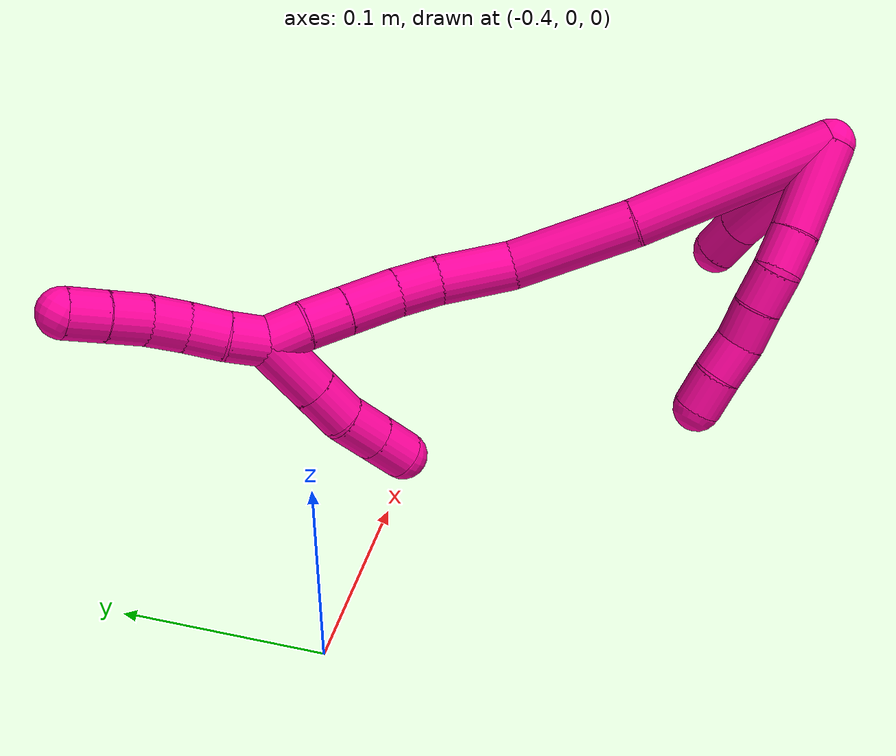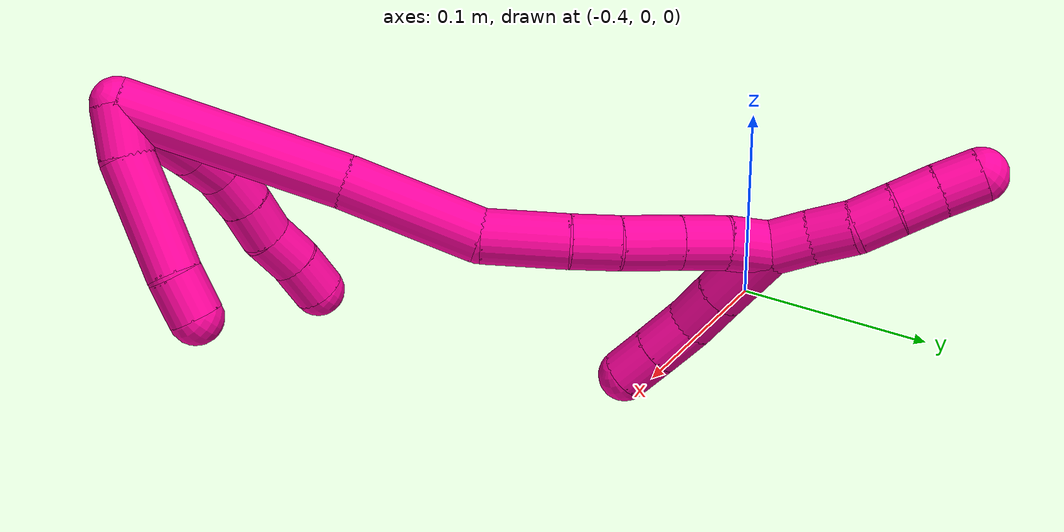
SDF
<sdf version="1.7">
 <world name="default">
  <model name="18">
   <static>0</static>
   <link name="18">
    <collision name="collision-cylinder-e_1_2_8">
     <pose>0.002979 -0.000865 0.023992 0.03603 0.123462 0.002227</pose>
     <geometry><cylinder><radius>0.0125</radius><length>0.048384</length></cylinder></geometry>
     <surface>
      <friction><ode><mu>1.16</mu><mu2>1.16</mu2><slip1>0</slip1><slip2>0</slip2></ode></friction>
      <contact><ode><kp>1e+06</kp><kd>1</kd><max_vel>0</max_vel><min_depth>0.001</min_depth></ode></contact>
     </surface>
    </collision>
    <visual name="visual-cylinder-e_1_2_8">
     <pose>0.002979 -0.000865 0.023992 0.03603 0.123462 0.002227</pose>
     <geometry><cylinder><radius>0.0125</radius><length>0.048384</length></cylinder></geometry>
     <material><ambient>1 0.007843 0.615686 1</ambient></material>
    </visual>
    <collision name="collision-cylinder-e_2_8_9">
     <pose>0.00645 -0.002209 0.058173 0.046996 0.048187 0.001133</pose>
     <geometry><cylinder><radius>0.0125</radius><length>0.020423</length></cylinder></geometry>
     <surface>
      <friction><ode><mu>1.16</mu><mu2>1.16</mu2><slip1>0</slip1><slip2>0</slip2></ode></friction>
      <contact><ode><kp>1e+06</kp><kd>1</kd><max_vel>0</max_vel><min_depth>0.001</min_depth></ode></contact>
     </surface>
    </collision>
    <visual name="visual-cylinder-e_2_8_9">
     <pose>0.00645 -0.002209 0.058173 0.046996 0.048187 0.001133</pose>
     <geometry><cylinder><radius>0.0125</radius><length>0.020423</length></cylinder></geometry>
     <material><ambient>1 0.007843 0.615686 1</ambient></material>
    </visual>
    <collision name="collision-cylinder-e_3_9_10">
     <pose>0.004982 -0.004582 0.078244 0.18933 -0.192385 -0.018323</pose>
     <geometry><cylinder><radius>0.0125</radius><length>0.020505</length></cylinder></geometry>
     <surface>
      <friction><ode><mu>1.16</mu><mu2>1.16</mu2><slip1>0</slip1><slip2>0</slip2></ode></friction>
      <contact><ode><kp>1e+06</kp><kd>1</kd><max_vel>0</max_vel><min_depth>0.001</min_depth></ode></contact>
     </surface>
    </collision>
    <visual name="visual-cylinder-e_3_9_10">
     <pose>0.004982 -0.004582 0.078244 0.18933 -0.192385 -0.018323</pose>
     <geometry><cylinder><radius>0.0125</radius><length>0.020505</length></cylinder></geometry>
     <material><ambient>1 0.007843 0.615686 1</ambient></material>
    </visual>
    <collision name="collision-cylinder-e_4_10_11">
     <pose>0.000701 -0.009223 0.097603 0.282158 -0.231051 -0.032958</pose>
     <geometry><cylinder><radius>0.0125</radius><length>0.02027</length></cylinder></geometry>
     <surface>
      <friction><ode><mu>1.16</mu><mu2>1.16</mu2><slip1>0</slip1><slip2>0</slip2></ode></friction>
      <contact><ode><kp>1e+06</kp><kd>1</kd><max_vel>0</max_vel><min_depth>0.001</min_depth></ode></contact>
     </surface>
    </collision>
    <visual name="visual-cylinder-e_4_10_11">
     <pose>0.000701 -0.009223 0.097603 0.282158 -0.231051 -0.032958</pose>
     <geometry><cylinder><radius>0.0125</radius><length>0.02027</length></cylinder></geometry>
     <material><ambient>1 0.007843 0.615686 1</ambient></material>
    </visual>
    <collision name="collision-cylinder-e_5_11_12">
     <pose>-0.003638 -0.012427 0.116944 0.04631 -0.2015 -0.004682</pose>
     <geometry><cylinder><radius>0.0125</radius><length>0.02016</length></cylinder></geometry>
     <surface>
      <friction><ode><mu>1.16</mu><mu2>1.16</mu2><slip1>0</slip1><slip2>0</slip2></ode></friction>
      <contact><ode><kp>1e+06</kp><kd>1</kd><max_vel>0</max_vel><min_depth>0.001</min_depth></ode></contact>
     </surface>
    </collision>
    <visual name="visual-cylinder-e_5_11_12">
     <pose>-0.003638 -0.012427 0.116944 0.04631 -0.2015 -0.004682</pose>
     <geometry><cylinder><radius>0.0125</radius><length>0.02016</length></cylinder></geometry>
     <material><ambient>1 0.007843 0.615686 1</ambient></material>
    </visual>
    <collision name="collision-cylinder-e_6_12_6">
     <pose>-0.008213 -0.014592 0.136461 0.175174 -0.255336 -0.022543</pose>
     <geometry><cylinder><radius>0.0125</radius><length>0.020259</length></cylinder></geometry>
     <surface>
      <friction><ode><mu>1.16</mu><mu2>1.16</mu2><slip1>0</slip1><slip2>0</slip2></ode></friction>
      <contact><ode><kp>1e+06</kp><kd>1</kd><max_vel>0</max_vel><min_depth>0.001</min_depth></ode></contact>
     </surface>
    </collision>
    <visual name="visual-cylinder-e_6_12_6">
     <pose>-0.008213 -0.014592 0.136461 0.175174 -0.255336 -0.022543</pose>
     <geometry><cylinder><radius>0.0125</radius><length>0.020259</length></cylinder></geometry>
     <material><ambient>1 0.007843 0.615686 1</ambient></material>
    </visual>
    <collision name="collision-cylinder-e_1_2_13">
     <pose>-0.008494 -0.005443 0.006537 0.694316 -0.784667 -0.297217</pose>
     <geometry><cylinder><radius>0.0125</radius><length>0.024043</length></cylinder></geometry>
     <surface>
      <friction><ode><mu>1.16</mu><mu2>1.16</mu2><slip1>0</slip1><slip2>0</slip2></ode></friction>
      <contact><ode><kp>1e+06</kp><kd>1</kd><max_vel>0</max_vel><min_depth>0.001</min_depth></ode></contact>
     </surface>
    </collision>
    <visual name="visual-cylinder-e_1_2_13">
     <pose>-0.008494 -0.005443 0.006537 0.694316 -0.784667 -0.297217</pose>
     <geometry><cylinder><radius>0.0125</radius><length>0.024043</length></cylinder></geometry>
     <material><ambient>1 0.007843 0.615686 1</ambient></material>
    </visual>
    <collision name="collision-cylinder-e_2_13_14">
     <pose>-0.036804 -0.018011 0.030693 0.38431 -0.806293 -0.165579</pose>
     <geometry><cylinder><radius>0.0125</radius><length>0.054911</length></cylinder></geometry>
     <surface>
      <friction><ode><mu>1.16</mu><mu2>1.16</mu2><slip1>0</slip1><slip2>0</slip2></ode></friction>
      <contact><ode><kp>1e+06</kp><kd>1</kd><max_vel>0</max_vel><min_depth>0.001</min_depth></ode></contact>
     </surface>
    </collision>
    <visual name="visual-cylinder-e_2_13_14">
     <pose>-0.036804 -0.018011 0.030693 0.38431 -0.806293 -0.165579</pose>
     <geometry><cylinder><radius>0.0125</radius><length>0.054911</length></cylinder></geometry>
     <material><ambient>1 0.007843 0.615686 1</ambient></material>
    </visual>
    <collision name="collision-cylinder-e_3_14_5">
     <pose>-0.063078 -0.027697 0.056214 0.313358 -0.660779 -0.108252</pose>
     <geometry><cylinder><radius>0.0125</radius><length>0.021046</length></cylinder></geometry>
     <surface>
      <friction><ode><mu>1.16</mu><mu2>1.16</mu2><slip1>0</slip1><slip2>0</slip2></ode></friction>
      <contact><ode><kp>1e+06</kp><kd>1</kd><max_vel>0</max_vel><min_depth>0.001</min_depth></ode></contact>
     </surface>
    </collision>
    <visual name="visual-cylinder-e_3_14_5">
     <pose>-0.063078 -0.027697 0.056214 0.313358 -0.660779 -0.108252</pose>
     <geometry><cylinder><radius>0.0125</radius><length>0.021046</length></cylinder></geometry>
     <material><ambient>1 0.007843 0.615686 1</ambient></material>
    </visual>
    <collision name="collision-cylinder-e_1_2_15">
     <pose>-0.021092 0.02597 0.040207 -0.573489 -0.415051 0.124015</pose>
     <geometry><cylinder><radius>0.0125</radius><length>0.104612</length></cylinder></geometry>
     <surface>
      <friction><ode><mu>1.16</mu><mu2>1.16</mu2><slip1>0</slip1><slip2>0</slip2></ode></friction>
      <contact><ode><kp>1e+06</kp><kd>1</kd><max_vel>0</max_vel><min_depth>0.001</min_depth></ode></contact>
     </surface>
    </collision>
    <visual name="visual-cylinder-e_1_2_15">
     <pose>-0.021092 0.02597 0.040207 -0.573489 -0.415051 0.124015</pose>
     <geometry><cylinder><radius>0.0125</radius><length>0.104612</length></cylinder></geometry>
     <material><ambient>1 0.007843 0.615686 1</ambient></material>
    </visual>
    <collision name="collision-cylinder-e_2_15_16">
     <pose>-0.058089 0.067432 0.103931 -0.582519 -0.514141 0.157294</pose>
     <geometry><cylinder><radius>0.0125</radius><length>0.064683</length></cylinder></geometry>
     <surface>
      <friction><ode><mu>1.16</mu><mu2>1.16</mu2><slip1>0</slip1><slip2>0</slip2></ode></friction>
      <contact><ode><kp>1e+06</kp><kd>1</kd><max_vel>0</max_vel><min_depth>0.001</min_depth></ode></contact>
     </surface>
    </collision>
    <visual name="visual-cylinder-e_2_15_16">
     <pose>-0.058089 0.067432 0.103931 -0.582519 -0.514141 0.157294</pose>
     <geometry><cylinder><radius>0.0125</radius><length>0.064683</length></cylinder></geometry>
     <material><ambient>1 0.007843 0.615686 1</ambient></material>
    </visual>
    <collision name="collision-cylinder-e_3_16_17">
     <pose>-0.079853 0.096892 0.1399 -0.842682 -0.3034 0.136817</pose>
     <geometry><cylinder><radius>0.0125</radius><length>0.039218</length></cylinder></geometry>
     <surface>
      <friction><ode><mu>1.16</mu><mu2>1.16</mu2><slip1>0</slip1><slip2>0</slip2></ode></friction>
      <contact><ode><kp>1e+06</kp><kd>1</kd><max_vel>0</max_vel><min_depth>0.001</min_depth></ode></contact>
     </surface>
    </collision>
    <visual name="visual-cylinder-e_3_16_17">
     <pose>-0.079853 0.096892 0.1399 -0.842682 -0.3034 0.136817</pose>
     <geometry><cylinder><radius>0.0125</radius><length>0.039218</length></cylinder></geometry>
     <material><ambient>1 0.007843 0.615686 1</ambient></material>
    </visual>
    <collision name="collision-cylinder-e_4_17_18">
     <pose>-0.087998 0.118616 0.159976 -0.794085 -0.207239 0.087155</pose>
     <geometry><cylinder><radius>0.0125</radius><length>0.022224</length></cylinder></geometry>
     <surface>
      <friction><ode><mu>1.16</mu><mu2>1.16</mu2><slip1>0</slip1><slip2>0</slip2></ode></friction>
      <contact><ode><kp>1e+06</kp><kd>1</kd><max_vel>0</max_vel><min_depth>0.001</min_depth></ode></contact>
     </surface>
    </collision>
    <visual name="visual-cylinder-e_4_17_18">
     <pose>-0.087998 0.118616 0.159976 -0.794085 -0.207239 0.087155</pose>
     <geometry><cylinder><radius>0.0125</radius><length>0.022224</length></cylinder></geometry>
     <material><ambient>1 0.007843 0.615686 1</ambient></material>
    </visual>
    <collision name="collision-cylinder-e_5_18_19">
     <pose>-0.091852 0.135898 0.177483 -0.766921 -0.113708 0.045915</pose>
     <geometry><cylinder><radius>0.0125</radius><length>0.027635</length></cylinder></geometry>
     <surface>
      <friction><ode><mu>1.16</mu><mu2>1.16</mu2><slip1>0</slip1><slip2>0</slip2></ode></friction>
      <contact><ode><kp>1e+06</kp><kd>1</kd><max_vel>0</max_vel><min_depth>0.001</min_depth></ode></contact>
     </surface>
    </collision>
    <visual name="visual-cylinder-e_5_18_19">
     <pose>-0.091852 0.135898 0.177483 -0.766921 -0.113708 0.045915</pose>
     <geometry><cylinder><radius>0.0125</radius><length>0.027635</length></cylinder></geometry>
     <material><ambient>1 0.007843 0.615686 1</ambient></material>
    </visual>
    <collision name="collision-cylinder-e_6_19_20">
     <pose>-0.0948 0.152744 0.195062 -0.76046 -0.129293 0.051736</pose>
     <geometry><cylinder><radius>0.0125</radius><length>0.021418</length></cylinder></geometry>
     <surface>
      <friction><ode><mu>1.16</mu><mu2>1.16</mu2><slip1>0</slip1><slip2>0</slip2></ode></friction>
      <contact><ode><kp>1e+06</kp><kd>1</kd><max_vel>0</max_vel><min_depth>0.001</min_depth></ode></contact>
     </surface>
    </collision>
    <visual name="visual-cylinder-e_6_19_20">
     <pose>-0.0948 0.152744 0.195062 -0.76046 -0.129293 0.051736</pose>
     <geometry><cylinder><radius>0.0125</radius><length>0.021418</length></cylinder></geometry>
     <material><ambient>1 0.007843 0.615686 1</ambient></material>
    </visual>
    <collision name="collision-cylinder-e_7_20_1">
     <pose>-0.098196 0.166184 0.21054 -0.666333 -0.200729 0.069672</pose>
     <geometry><cylinder><radius>0.0125</radius><length>0.020209</length></cylinder></geometry>
     <surface>
      <friction><ode><mu>1.16</mu><mu2>1.16</mu2><slip1>0</slip1><slip2>0</slip2></ode></friction>
      <contact><ode><kp>1e+06</kp><kd>1</kd><max_vel>0</max_vel><min_depth>0.001</min_depth></ode></contact>
     </surface>
    </collision>
    <visual name="visual-cylinder-e_7_20_1">
     <pose>-0.098196 0.166184 0.21054 -0.666333 -0.200729 0.069672</pose>
     <geometry><cylinder><radius>0.0125</radius><length>0.020209</length></cylinder></geometry>
     <material><ambient>1 0.007843 0.615686 1</ambient></material>
    </visual>
    <collision name="collision-cylinder-e_1_1_21">
     <pose>-0.102449 0.181529 0.22147 -1.24202 -0.225782 0.161866</pose>
     <geometry><cylinder><radius>0.0125</radius><length>0.02</length></cylinder></geometry>
     <surface>
      <friction><ode><mu>1.16</mu><mu2>1.16</mu2><slip1>0</slip1><slip2>0</slip2></ode></friction>
      <contact><ode><kp>1e+06</kp><kd>1</kd><max_vel>0</max_vel><min_depth>0.001</min_depth></ode></contact>
     </surface>
    </collision>
    <visual name="visual-cylinder-e_1_1_21">
     <pose>-0.102449 0.181529 0.22147 -1.24202 -0.225782 0.161866</pose>
     <geometry><cylinder><radius>0.0125</radius><length>0.02</length></cylinder></geometry>
     <material><ambient>1 0.007843 0.615686 1</ambient></material>
    </visual>
    <collision name="collision-cylinder-e_2_21_22">
     <pose>-0.107906 0.199884 0.227119 -1.3034 -0.327711 0.250945</pose>
     <geometry><cylinder><radius>0.0125</radius><length>0.02</length></cylinder></geometry>
     <surface>
      <friction><ode><mu>1.16</mu><mu2>1.16</mu2><slip1>0</slip1><slip2>0</slip2></ode></friction>
      <contact><ode><kp>1e+06</kp><kd>1</kd><max_vel>0</max_vel><min_depth>0.001</min_depth></ode></contact>
     </surface>
    </collision>
    <visual name="visual-cylinder-e_2_21_22">
     <pose>-0.107906 0.199884 0.227119 -1.3034 -0.327711 0.250945</pose>
     <geometry><cylinder><radius>0.0125</radius><length>0.02</length></cylinder></geometry>
     <material><ambient>1 0.007843 0.615686 1</ambient></material>
    </visual>
    <collision name="collision-cylinder-e_3_22_23">
     <pose>-0.112019 0.218644 0.232168 -1.31212 -0.089512 0.068926</pose>
     <geometry><cylinder><radius>0.0125</radius><length>0.02</length></cylinder></geometry>
     <surface>
      <friction><ode><mu>1.16</mu><mu2>1.16</mu2><slip1>0</slip1><slip2>0</slip2></ode></friction>
      <contact><ode><kp>1e+06</kp><kd>1</kd><max_vel>0</max_vel><min_depth>0.001</min_depth></ode></contact>
     </surface>
    </collision>
    <visual name="visual-cylinder-e_3_22_23">
     <pose>-0.112019 0.218644 0.232168 -1.31212 -0.089512 0.068926</pose>
     <geometry><cylinder><radius>0.0125</radius><length>0.02</length></cylinder></geometry>
     <material><ambient>1 0.007843 0.615686 1</ambient></material>
    </visual>
    <collision name="collision-cylinder-e_4_23_24">
     <pose>-0.113121 0.237703 0.238037 -1.23219 -0.0208 0.014728</pose>
     <geometry><cylinder><radius>0.0125</radius><length>0.02</length></cylinder></geometry>
     <surface>
      <friction><ode><mu>1.16</mu><mu2>1.16</mu2><slip1>0</slip1><slip2>0</slip2></ode></friction>
      <contact><ode><kp>1e+06</kp><kd>1</kd><max_vel>0</max_vel><min_depth>0.001</min_depth></ode></contact>
     </surface>
    </collision>
    <visual name="visual-cylinder-e_4_23_24">
     <pose>-0.113121 0.237703 0.238037 -1.23219 -0.0208 0.014728</pose>
     <geometry><cylinder><radius>0.0125</radius><length>0.02</length></cylinder></geometry>
     <material><ambient>1 0.007843 0.615686 1</ambient></material>
    </visual>
    <collision name="collision-cylinder-e_5_24_4">
     <pose>-0.113993 0.256505 0.244781 -1.22065 -0.06648 0.046505</pose>
     <geometry><cylinder><radius>0.0125</radius><length>0.02</length></cylinder></geometry>
     <surface>
      <friction><ode><mu>1.16</mu><mu2>1.16</mu2><slip1>0</slip1><slip2>0</slip2></ode></friction>
      <contact><ode><kp>1e+06</kp><kd>1</kd><max_vel>0</max_vel><min_depth>0.001</min_depth></ode></contact>
     </surface>
    </collision>
    <visual name="visual-cylinder-e_5_24_4">
     <pose>-0.113993 0.256505 0.244781 -1.22065 -0.06648 0.046505</pose>
     <geometry><cylinder><radius>0.0125</radius><length>0.02</length></cylinder></geometry>
     <material><ambient>1 0.007843 0.615686 1</ambient></material>
    </visual>
    <collision name="collision-cylinder-e_1_1_25">
     <pose>-0.097647 0.155757 0.223331 1.27695 0.147202 0.109339</pose>
     <geometry><cylinder><radius>0.0125</radius><length>0.034956</length></cylinder></geometry>
     <surface>
      <friction><ode><mu>1.16</mu><mu2>1.16</mu2><slip1>0</slip1><slip2>0</slip2></ode></friction>
      <contact><ode><kp>1e+06</kp><kd>1</kd><max_vel>0</max_vel><min_depth>0.001</min_depth></ode></contact>
     </surface>
    </collision>
    <visual name="visual-cylinder-e_1_1_25">
     <pose>-0.097647 0.155757 0.223331 1.27695 0.147202 0.109339</pose>
     <geometry><cylinder><radius>0.0125</radius><length>0.034956</length></cylinder></geometry>
     <material><ambient>1 0.007843 0.615686 1</ambient></material>
    </visual>
    <collision name="collision-cylinder-e_2_25_26">
     <pose>-0.093535 0.128583 0.231624 1.2709 0.138279 0.102054</pose>
     <geometry><cylinder><radius>0.0125</radius><length>0.02246</length></cylinder></geometry>
     <surface>
      <friction><ode><mu>1.16</mu><mu2>1.16</mu2><slip1>0</slip1><slip2>0</slip2></ode></friction>
      <contact><ode><kp>1e+06</kp><kd>1</kd><max_vel>0</max_vel><min_depth>0.001</min_depth></ode></contact>
     </surface>
    </collision>
    <visual name="visual-cylinder-e_2_25_26">
     <pose>-0.093535 0.128583 0.231624 1.2709 0.138279 0.102054</pose>
     <geometry><cylinder><radius>0.0125</radius><length>0.02246</length></cylinder></geometry>
     <material><ambient>1 0.007843 0.615686 1</ambient></material>
    </visual>
    <collision name="collision-cylinder-e_3_26_27">
     <pose>-0.091312 0.106998 0.236084 1.46403 0.061211 0.055004</pose>
     <geometry><cylinder><radius>0.0125</radius><length>0.022084</length></cylinder></geometry>
     <surface>
      <friction><ode><mu>1.16</mu><mu2>1.16</mu2><slip1>0</slip1><slip2>0</slip2></ode></friction>
      <contact><ode><kp>1e+06</kp><kd>1</kd><max_vel>0</max_vel><min_depth>0.001</min_depth></ode></contact>
     </surface>
    </collision>
    <visual name="visual-cylinder-e_3_26_27">
     <pose>-0.091312 0.106998 0.236084 1.46403 0.061211 0.055004</pose>
     <geometry><cylinder><radius>0.0125</radius><length>0.022084</length></cylinder></geometry>
     <material><ambient>1 0.007843 0.615686 1</ambient></material>
    </visual>
    <collision name="collision-cylinder-e_4_27_3">
     <pose>-0.089859 0.085875 0.23833 1.46578 0.075925 0.068349</pose>
     <geometry><cylinder><radius>0.0125</radius><length>0.020501</length></cylinder></geometry>
     <surface>
      <friction><ode><mu>1.16</mu><mu2>1.16</mu2><slip1>0</slip1><slip2>0</slip2></ode></friction>
      <contact><ode><kp>1e+06</kp><kd>1</kd><max_vel>0</max_vel><min_depth>0.001</min_depth></ode></contact>
     </surface>
    </collision>
    <visual name="visual-cylinder-e_4_27_3">
     <pose>-0.089859 0.085875 0.23833 1.46578 0.075925 0.068349</pose>
     <geometry><cylinder><radius>0.0125</radius><length>0.020501</length></cylinder></geometry>
     <material><ambient>1 0.007843 0.615686 1</ambient></material>
    </visual>
    <collision name="collision-sphere-3">
     <pose>-0.089082 0.07571 0.239401 0 -0 0</pose>
     <geometry><sphere><radius>0.0125</radius></sphere></geometry>
     <surface>
      <friction><ode><mu>1.16</mu><mu2>1.16</mu2><slip1>0</slip1><slip2>0</slip2></ode></friction>
      <contact><ode><kp>1e+06</kp><kd>1</kd><max_vel>0</max_vel><min_depth>0.001</min_depth></ode></contact>
     </surface>
    </collision>
    <visual name="visual-sphere-3">
     <pose>-0.089082 0.07571 0.239401 0 -0 0</pose>
     <geometry><sphere><radius>0.0125</radius></sphere></geometry>
     <material><ambient>1 0.007843 0.615686 1</ambient></material>
    </visual>
    <collision name="collision-sphere-27">
     <pose>-0.090637 0.09604 0.237259 0 -0 0</pose>
     <geometry><sphere><radius>0.0125</radius></sphere></geometry>
     <surface>
      <friction><ode><mu>1.16</mu><mu2>1.16</mu2><slip1>0</slip1><slip2>0</slip2></ode></friction>
      <contact><ode><kp>1e+06</kp><kd>1</kd><max_vel>0</max_vel><min_depth>0.001</min_depth></ode></contact>
     </surface>
    </collision>
    <visual name="visual-sphere-27">
     <pose>-0.090637 0.09604 0.237259 0 -0 0</pose>
     <geometry><sphere><radius>0.0125</radius></sphere></geometry>
     <material><ambient>1 0.007843 0.615686 1</ambient></material>
    </visual>
    <collision name="collision-sphere-26">
     <pose>-0.091987 0.117956 0.23491 0 -0 0</pose>
     <geometry><sphere><radius>0.0125</radius></sphere></geometry>
     <surface>
      <friction><ode><mu>1.16</mu><mu2>1.16</mu2><slip1>0</slip1><slip2>0</slip2></ode></friction>
      <contact><ode><kp>1e+06</kp><kd>1</kd><max_vel>0</max_vel><min_depth>0.001</min_depth></ode></contact>
     </surface>
    </collision>
    <visual name="visual-sphere-26">
     <pose>-0.091987 0.117956 0.23491 0 -0 0</pose>
     <geometry><sphere><radius>0.0125</radius></sphere></geometry>
     <material><ambient>1 0.007843 0.615686 1</ambient></material>
    </visual>
    <collision name="collision-sphere-25">
     <pose>-0.095083 0.139209 0.228338 0 -0 0</pose>
     <geometry><sphere><radius>0.0125</radius></sphere></geometry>
     <surface>
      <friction><ode><mu>1.16</mu><mu2>1.16</mu2><slip1>0</slip1><slip2>0</slip2></ode></friction>
      <contact><ode><kp>1e+06</kp><kd>1</kd><max_vel>0</max_vel><min_depth>0.001</min_depth></ode></contact>
     </surface>
    </collision>
    <visual name="visual-sphere-25">
     <pose>-0.095083 0.139209 0.228338 0 -0 0</pose>
     <geometry><sphere><radius>0.0125</radius></sphere></geometry>
     <material><ambient>1 0.007843 0.615686 1</ambient></material>
    </visual>
    <collision name="collision-sphere-4">
     <pose>-0.114658 0.265878 0.248203 0 -0 0</pose>
     <geometry><sphere><radius>0.0125</radius></sphere></geometry>
     <surface>
      <friction><ode><mu>1.16</mu><mu2>1.16</mu2><slip1>0</slip1><slip2>0</slip2></ode></friction>
      <contact><ode><kp>1e+06</kp><kd>1</kd><max_vel>0</max_vel><min_depth>0.001</min_depth></ode></contact>
     </surface>
    </collision>
    <visual name="visual-sphere-4">
     <pose>-0.114658 0.265878 0.248203 0 -0 0</pose>
     <geometry><sphere><radius>0.0125</radius></sphere></geometry>
     <material><ambient>1 0.007843 0.615686 1</ambient></material>
    </visual>
    <collision name="collision-sphere-24">
     <pose>-0.113329 0.247133 0.241358 0 -0 0</pose>
     <geometry><sphere><radius>0.0125</radius></sphere></geometry>
     <surface>
      <friction><ode><mu>1.16</mu><mu2>1.16</mu2><slip1>0</slip1><slip2>0</slip2></ode></friction>
      <contact><ode><kp>1e+06</kp><kd>1</kd><max_vel>0</max_vel><min_depth>0.001</min_depth></ode></contact>
     </surface>
    </collision>
    <visual name="visual-sphere-24">
     <pose>-0.113329 0.247133 0.241358 0 -0 0</pose>
     <geometry><sphere><radius>0.0125</radius></sphere></geometry>
     <material><ambient>1 0.007843 0.615686 1</ambient></material>
    </visual>
    <collision name="collision-sphere-23">
     <pose>-0.112913 0.228273 0.234716 0 -0 0</pose>
     <geometry><sphere><radius>0.0125</radius></sphere></geometry>
     <surface>
      <friction><ode><mu>1.16</mu><mu2>1.16</mu2><slip1>0</slip1><slip2>0</slip2></ode></friction>
      <contact><ode><kp>1e+06</kp><kd>1</kd><max_vel>0</max_vel><min_depth>0.001</min_depth></ode></contact>
     </surface>
    </collision>
    <visual name="visual-sphere-23">
     <pose>-0.112913 0.228273 0.234716 0 -0 0</pose>
     <geometry><sphere><radius>0.0125</radius></sphere></geometry>
     <material><ambient>1 0.007843 0.615686 1</ambient></material>
    </visual>
    <collision name="collision-sphere-22">
     <pose>-0.111125 0.209015 0.22962 0 -0 0</pose>
     <geometry><sphere><radius>0.0125</radius></sphere></geometry>
     <surface>
      <friction><ode><mu>1.16</mu><mu2>1.16</mu2><slip1>0</slip1><slip2>0</slip2></ode></friction>
      <contact><ode><kp>1e+06</kp><kd>1</kd><max_vel>0</max_vel><min_depth>0.001</min_depth></ode></contact>
     </surface>
    </collision>
    <visual name="visual-sphere-22">
     <pose>-0.111125 0.209015 0.22962 0 -0 0</pose>
     <geometry><sphere><radius>0.0125</radius></sphere></geometry>
     <material><ambient>1 0.007843 0.615686 1</ambient></material>
    </visual>
    <collision name="collision-sphere-21">
     <pose>-0.104688 0.190753 0.224617 0 -0 0</pose>
     <geometry><sphere><radius>0.0125</radius></sphere></geometry>
     <surface>
      <friction><ode><mu>1.16</mu><mu2>1.16</mu2><slip1>0</slip1><slip2>0</slip2></ode></friction>
      <contact><ode><kp>1e+06</kp><kd>1</kd><max_vel>0</max_vel><min_depth>0.001</min_depth></ode></contact>
     </surface>
    </collision>
    <visual name="visual-sphere-21">
     <pose>-0.104688 0.190753 0.224617 0 -0 0</pose>
     <geometry><sphere><radius>0.0125</radius></sphere></geometry>
     <material><ambient>1 0.007843 0.615686 1</ambient></material>
    </visual>
    <collision name="collision-sphere-1">
     <pose>-0.10021 0.172304 0.218323 0 -0 0</pose>
     <geometry><sphere><radius>0.0125</radius></sphere></geometry>
     <surface>
      <friction><ode><mu>1.16</mu><mu2>1.16</mu2><slip1>0</slip1><slip2>0</slip2></ode></friction>
      <contact><ode><kp>1e+06</kp><kd>1</kd><max_vel>0</max_vel><min_depth>0.001</min_depth></ode></contact>
     </surface>
    </collision>
    <visual name="visual-sphere-1">
     <pose>-0.10021 0.172304 0.218323 0 -0 0</pose>
     <geometry><sphere><radius>0.0125</radius></sphere></geometry>
     <material><ambient>1 0.007843 0.615686 1</ambient></material>
    </visual>
    <collision name="collision-sphere-12">
     <pose>-0.005655 -0.012884 0.12681 0 -0 0</pose>
     <geometry><sphere><radius>0.0125</radius></sphere></geometry>
     <surface>
      <friction><ode><mu>1.16</mu><mu2>1.16</mu2><slip1>0</slip1><slip2>0</slip2></ode></friction>
      <contact><ode><kp>1e+06</kp><kd>1</kd><max_vel>0</max_vel><min_depth>0.001</min_depth></ode></contact>
     </surface>
    </collision>
    <visual name="visual-sphere-12">
     <pose>-0.005655 -0.012884 0.12681 0 -0 0</pose>
     <geometry><sphere><radius>0.0125</radius></sphere></geometry>
     <material><ambient>1 0.007843 0.615686 1</ambient></material>
    </visual>
    <collision name="collision-sphere-11">
     <pose>-0.00162 -0.011969 0.107079 0 -0 0</pose>
     <geometry><sphere><radius>0.0125</radius></sphere></geometry>
     <surface>
      <friction><ode><mu>1.16</mu><mu2>1.16</mu2><slip1>0</slip1><slip2>0</slip2></ode></friction>
      <contact><ode><kp>1e+06</kp><kd>1</kd><max_vel>0</max_vel><min_depth>0.001</min_depth></ode></contact>
     </surface>
    </collision>
    <visual name="visual-sphere-11">
     <pose>-0.00162 -0.011969 0.107079 0 -0 0</pose>
     <geometry><sphere><radius>0.0125</radius></sphere></geometry>
     <material><ambient>1 0.007843 0.615686 1</ambient></material>
    </visual>
    <collision name="collision-sphere-10">
     <pose>0.003022 -0.006476 0.088128 0 -0 0</pose>
     <geometry><sphere><radius>0.0125</radius></sphere></geometry>
     <surface>
      <friction><ode><mu>1.16</mu><mu2>1.16</mu2><slip1>0</slip1><slip2>0</slip2></ode></friction>
      <contact><ode><kp>1e+06</kp><kd>1</kd><max_vel>0</max_vel><min_depth>0.001</min_depth></ode></contact>
     </surface>
    </collision>
    <visual name="visual-sphere-10">
     <pose>0.003022 -0.006476 0.088128 0 -0 0</pose>
     <geometry><sphere><radius>0.0125</radius></sphere></geometry>
     <material><ambient>1 0.007843 0.615686 1</ambient></material>
    </visual>
    <collision name="collision-sphere-9">
     <pose>0.006942 -0.002688 0.068361 0 -0 0</pose>
     <geometry><sphere><radius>0.0125</radius></sphere></geometry>
     <surface>
      <friction><ode><mu>1.16</mu><mu2>1.16</mu2><slip1>0</slip1><slip2>0</slip2></ode></friction>
      <contact><ode><kp>1e+06</kp><kd>1</kd><max_vel>0</max_vel><min_depth>0.001</min_depth></ode></contact>
     </surface>
    </collision>
    <visual name="visual-sphere-9">
     <pose>0.006942 -0.002688 0.068361 0 -0 0</pose>
     <geometry><sphere><radius>0.0125</radius></sphere></geometry>
     <material><ambient>1 0.007843 0.615686 1</ambient></material>
    </visual>
    <collision name="collision-sphere-2">
     <geometry><sphere><radius>0.0125</radius></sphere></geometry>
     <surface>
      <friction><ode><mu>1.16</mu><mu2>1.16</mu2><slip1>0</slip1><slip2>0</slip2></ode></friction>
      <contact><ode><kp>1e+06</kp><kd>1</kd><max_vel>0</max_vel><min_depth>0.001</min_depth></ode></contact>
     </surface>
    </collision>
    <visual name="visual-sphere-2">
     <geometry><sphere><radius>0.0125</radius></sphere></geometry>
     <material><ambient>1 0.007843 0.615686 1</ambient></material>
    </visual>
    <collision name="collision-sphere-19">
     <pose>-0.093419 0.145425 0.187368 0 -0 0</pose>
     <geometry><sphere><radius>0.0125</radius></sphere></geometry>
     <surface>
      <friction><ode><mu>1.16</mu><mu2>1.16</mu2><slip1>0</slip1><slip2>0</slip2></ode></friction>
      <contact><ode><kp>1e+06</kp><kd>1</kd><max_vel>0</max_vel><min_depth>0.001</min_depth></ode></contact>
     </surface>
    </collision>
    <visual name="visual-sphere-19">
     <pose>-0.093419 0.145425 0.187368 0 -0 0</pose>
     <geometry><sphere><radius>0.0125</radius></sphere></geometry>
     <material><ambient>1 0.007843 0.615686 1</ambient></material>
    </visual>
    <collision name="collision-sphere-8">
     <pose>0.005958 -0.00173 0.047984 0 -0 0</pose>
     <geometry><sphere><radius>0.0125</radius></sphere></geometry>
     <surface>
      <friction><ode><mu>1.16</mu><mu2>1.16</mu2><slip1>0</slip1><slip2>0</slip2></ode></friction>
      <contact><ode><kp>1e+06</kp><kd>1</kd><max_vel>0</max_vel><min_depth>0.001</min_depth></ode></contact>
     </surface>
    </collision>
    <visual name="visual-sphere-8">
     <pose>0.005958 -0.00173 0.047984 0 -0 0</pose>
     <geometry><sphere><radius>0.0125</radius></sphere></geometry>
     <material><ambient>1 0.007843 0.615686 1</ambient></material>
    </visual>
    <collision name="collision-sphere-6">
     <pose>-0.010772 -0.0163 0.146112 0 -0 0</pose>
     <geometry><sphere><radius>0.0125</radius></sphere></geometry>
     <surface>
      <friction><ode><mu>1.16</mu><mu2>1.16</mu2><slip1>0</slip1><slip2>0</slip2></ode></friction>
      <contact><ode><kp>1e+06</kp><kd>1</kd><max_vel>0</max_vel><min_depth>0.001</min_depth></ode></contact>
     </surface>
    </collision>
    <visual name="visual-sphere-6">
     <pose>-0.010772 -0.0163 0.146112 0 -0 0</pose>
     <geometry><sphere><radius>0.0125</radius></sphere></geometry>
     <material><ambient>1 0.007843 0.615686 1</ambient></material>
    </visual>
    <collision name="collision-sphere-13">
     <pose>-0.016989 -0.010886 0.013075 0 -0 0</pose>
     <geometry><sphere><radius>0.0125</radius></sphere></geometry>
     <surface>
      <friction><ode><mu>1.16</mu><mu2>1.16</mu2><slip1>0</slip1><slip2>0</slip2></ode></friction>
      <contact><ode><kp>1e+06</kp><kd>1</kd><max_vel>0</max_vel><min_depth>0.001</min_depth></ode></contact>
     </surface>
    </collision>
    <visual name="visual-sphere-13">
     <pose>-0.016989 -0.010886 0.013075 0 -0 0</pose>
     <geometry><sphere><radius>0.0125</radius></sphere></geometry>
     <material><ambient>1 0.007843 0.615686 1</ambient></material>
    </visual>
    <collision name="collision-sphere-14">
     <pose>-0.056619 -0.025136 0.04831 0 -0 0</pose>
     <geometry><sphere><radius>0.0125</radius></sphere></geometry>
     <surface>
      <friction><ode><mu>1.16</mu><mu2>1.16</mu2><slip1>0</slip1><slip2>0</slip2></ode></friction>
      <contact><ode><kp>1e+06</kp><kd>1</kd><max_vel>0</max_vel><min_depth>0.001</min_depth></ode></contact>
     </surface>
    </collision>
    <visual name="visual-sphere-14">
     <pose>-0.056619 -0.025136 0.04831 0 -0 0</pose>
     <geometry><sphere><radius>0.0125</radius></sphere></geometry>
     <material><ambient>1 0.007843 0.615686 1</ambient></material>
    </visual>
    <collision name="collision-sphere-5">
     <pose>-0.069536 -0.030258 0.064117 0 -0 0</pose>
     <geometry><sphere><radius>0.0125</radius></sphere></geometry>
     <surface>
      <friction><ode><mu>1.16</mu><mu2>1.16</mu2><slip1>0</slip1><slip2>0</slip2></ode></friction>
      <contact><ode><kp>1e+06</kp><kd>1</kd><max_vel>0</max_vel><min_depth>0.001</min_depth></ode></contact>
     </surface>
    </collision>
    <visual name="visual-sphere-5">
     <pose>-0.069536 -0.030258 0.064117 0 -0 0</pose>
     <geometry><sphere><radius>0.0125</radius></sphere></geometry>
     <material><ambient>1 0.007843 0.615686 1</ambient></material>
    </visual>
    <collision name="collision-sphere-15">
     <pose>-0.042184 0.05194 0.080415 0 -0 0</pose>
     <geometry><sphere><radius>0.0125</radius></sphere></geometry>
     <surface>
      <friction><ode><mu>1.16</mu><mu2>1.16</mu2><slip1>0</slip1><slip2>0</slip2></ode></friction>
      <contact><ode><kp>1e+06</kp><kd>1</kd><max_vel>0</max_vel><min_depth>0.001</min_depth></ode></contact>
     </surface>
    </collision>
    <visual name="visual-sphere-15">
     <pose>-0.042184 0.05194 0.080415 0 -0 0</pose>
     <geometry><sphere><radius>0.0125</radius></sphere></geometry>
     <material><ambient>1 0.007843 0.615686 1</ambient></material>
    </visual>
    <collision name="collision-sphere-16">
     <pose>-0.073994 0.082924 0.127447 0 -0 0</pose>
     <geometry><sphere><radius>0.0125</radius></sphere></geometry>
     <surface>
      <friction><ode><mu>1.16</mu><mu2>1.16</mu2><slip1>0</slip1><slip2>0</slip2></ode></friction>
      <contact><ode><kp>1e+06</kp><kd>1</kd><max_vel>0</max_vel><min_depth>0.001</min_depth></ode></contact>
     </surface>
    </collision>
    <visual name="visual-sphere-16">
     <pose>-0.073994 0.082924 0.127447 0 -0 0</pose>
     <geometry><sphere><radius>0.0125</radius></sphere></geometry>
     <material><ambient>1 0.007843 0.615686 1</ambient></material>
    </visual>
    <collision name="collision-sphere-17">
     <pose>-0.085711 0.110861 0.152353 0 -0 0</pose>
     <geometry><sphere><radius>0.0125</radius></sphere></geometry>
     <surface>
      <friction><ode><mu>1.16</mu><mu2>1.16</mu2><slip1>0</slip1><slip2>0</slip2></ode></friction>
      <contact><ode><kp>1e+06</kp><kd>1</kd><max_vel>0</max_vel><min_depth>0.001</min_depth></ode></contact>
     </surface>
    </collision>
    <visual name="visual-sphere-17">
     <pose>-0.085711 0.110861 0.152353 0 -0 0</pose>
     <geometry><sphere><radius>0.0125</radius></sphere></geometry>
     <material><ambient>1 0.007843 0.615686 1</ambient></material>
    </visual>
    <collision name="collision-sphere-18">
     <pose>-0.090284 0.126372 0.167598 0 -0 0</pose>
     <geometry><sphere><radius>0.0125</radius></sphere></geometry>
     <surface>
      <friction><ode><mu>1.16</mu><mu2>1.16</mu2><slip1>0</slip1><slip2>0</slip2></ode></friction>
      <contact><ode><kp>1e+06</kp><kd>1</kd><max_vel>0</max_vel><min_depth>0.001</min_depth></ode></contact>
     </surface>
    </collision>
    <visual name="visual-sphere-18">
     <pose>-0.090284 0.126372 0.167598 0 -0 0</pose>
     <geometry><sphere><radius>0.0125</radius></sphere></geometry>
     <material><ambient>1 0.007843 0.615686 1</ambient></material>
    </visual>
    <collision name="collision-sphere-20">
     <pose>-0.096181 0.160064 0.202756 0 -0 0</pose>
     <geometry><sphere><radius>0.0125</radius></sphere></geometry>
     <surface>
      <friction><ode><mu>1.16</mu><mu2>1.16</mu2><slip1>0</slip1><slip2>0</slip2></ode></friction>
      <contact><ode><kp>1e+06</kp><kd>1</kd><max_vel>0</max_vel><min_depth>0.001</min_depth></ode></contact>
     </surface>
    </collision>
    <visual name="visual-sphere-20">
     <pose>-0.096181 0.160064 0.202756 0 -0 0</pose>
     <geometry><sphere><radius>0.0125</radius></sphere></geometry>
     <material><ambient>1 0.007843 0.615686 1</ambient></material>
    </visual>
    <inertial>
     <pose>-0.055156 0.074166 0.125023 0 -0 0</pose>
     <mass>0.75</mass>
     <inertia>
      <ixx>0.000176</ixx>
      <ixy>0</ixy>
      <ixz>0</ixz>
      <iyy>0.000184</iyy>
      <iyz>0</iyz>
      <izz>4.5e-05</izz>
     </inertia>
    </inertial>
   </link>
   <pose>-0.151 -0.188992 0.159505 2.39792 -0.255636 -2.31993</pose>
  </model>
 </world>
</sdf>
